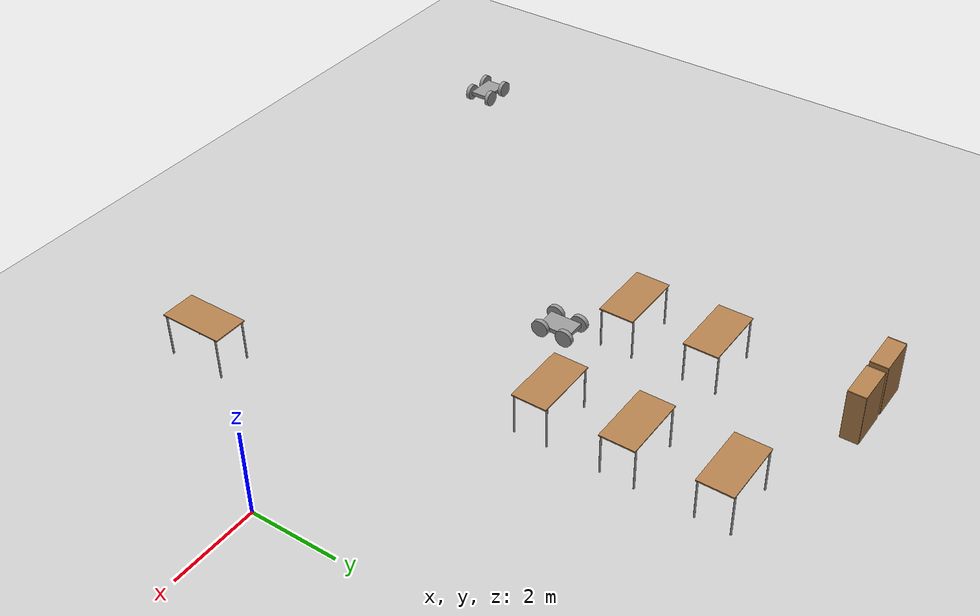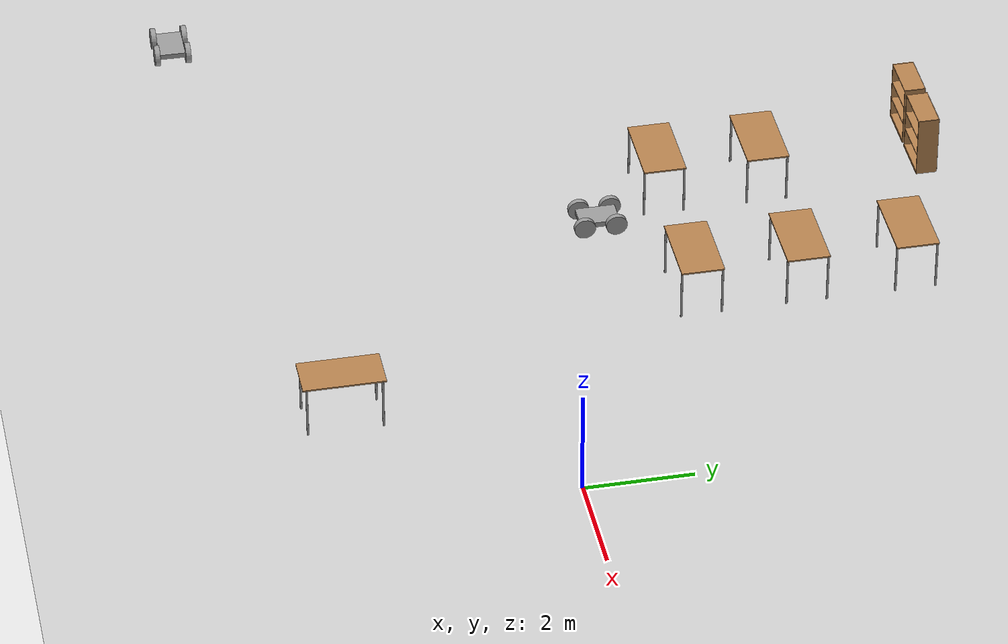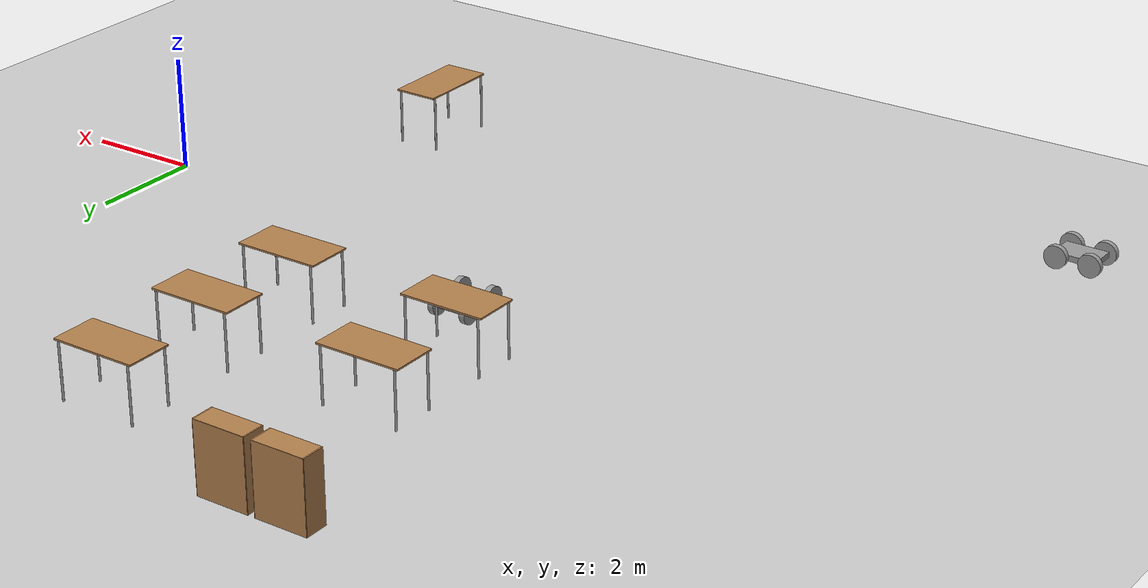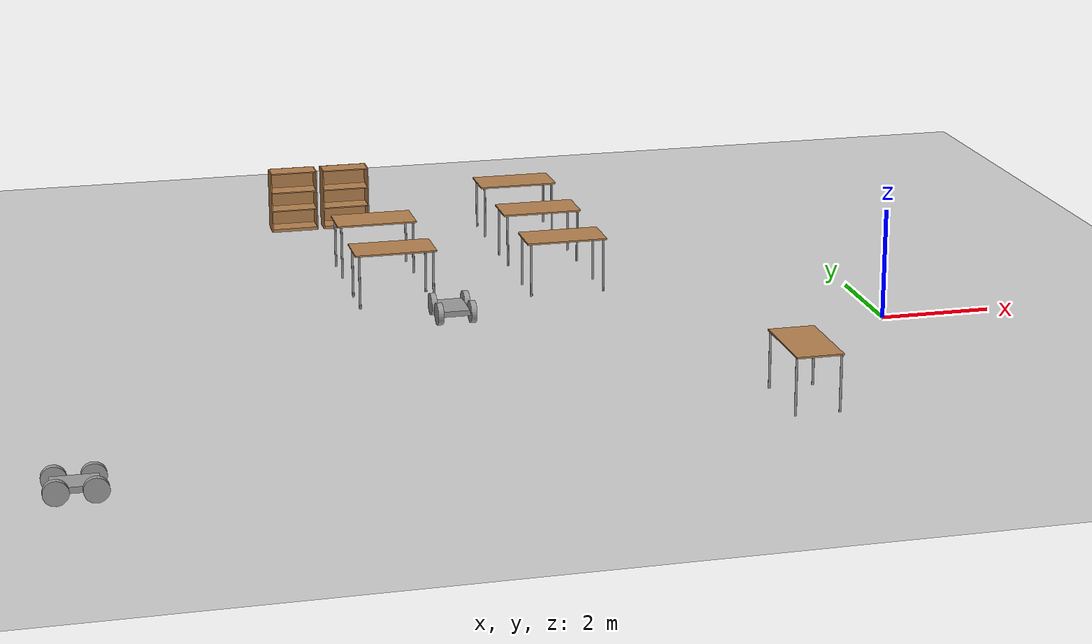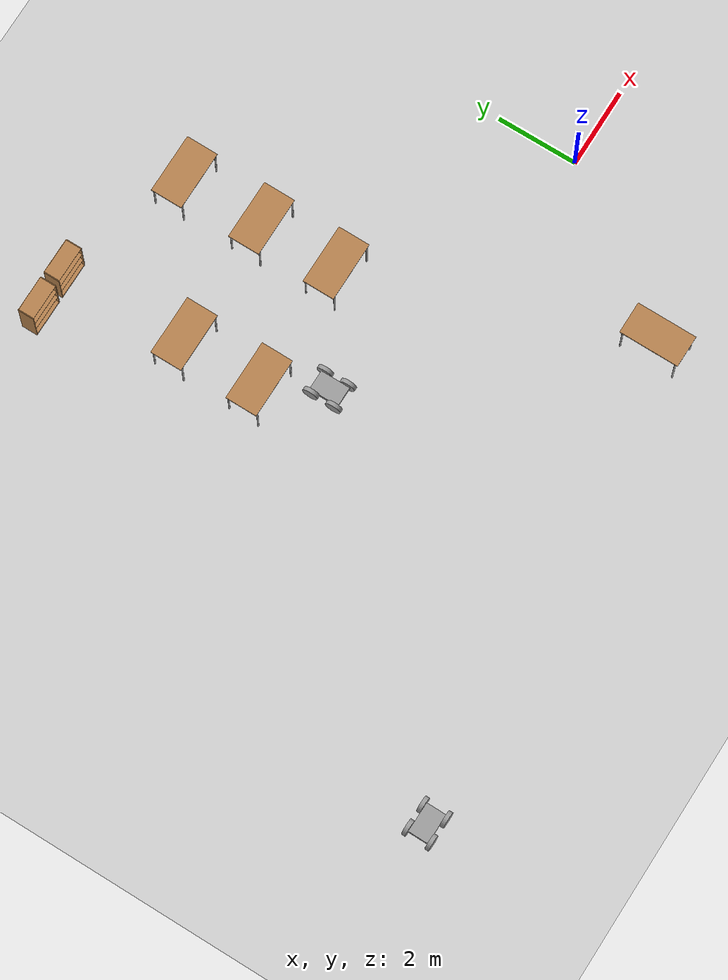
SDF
<sdf version="1.7">
 <world name="default">
  <model name="ground_plane">
   <static>1</static>
   <link name="link">
    <collision name="collision">
     <geometry><plane><normal>0 0 1</normal><size>100 100</size></plane></geometry>
     <surface>
      <contact><collide_bitmask>65535</collide_bitmask></contact>
      <friction><ode><mu>100</mu><mu2>50</mu2></ode></friction>
     </surface>
    </collision>
    <visual name="visual">
     <cast_shadows>0</cast_shadows>
     <geometry><plane><normal>0 0 1</normal><size>100 100</size></plane></geometry>
     <material>
      <script><uri>file://media/materials/scripts/gazebo.material</uri><name>Gazebo/Grey</name></script>
     </material>
    </visual>
   </link>
  </model>
  <model name="bookshelf">
   <static>1</static>
   <link name="link">
    <inertial><mass>1</mass></inertial>
    <collision name="back">
     <pose>0 0.005 0.6 0 -0 0</pose>
     <geometry><box><size>0.9 0.01 1.2</size></box></geometry>
    </collision>
    <visual name="visual1">
     <pose>0 0.005 0.6 0 -0 0</pose>
     <geometry><box><size>0.9 0.01 1.2</size></box></geometry>
     <material>
      <script><uri>file://media/materials/scripts/gazebo.material</uri><name>Gazebo/Wood</name></script>
     </material>
    </visual>
    <collision name="left_side">
     <pose>0.45 -0.195 0.6 0 -0 0</pose>
     <geometry><box><size>0.02 0.4 1.2</size></box></geometry>
    </collision>
    <visual name="visual2">
     <pose>0.45 -0.195 0.6 0 -0 0</pose>
     <geometry><box><size>0.02 0.4 1.2</size></box></geometry>
     <material>
      <script><uri>file://media/materials/scripts/gazebo.material</uri><name>Gazebo/Wood</name></script>
     </material>
    </visual>
    <collision name="right_side">
     <pose>-0.45 -0.195 0.6 0 -0 0</pose>
     <geometry><box><size>0.02 0.4 1.2</size></box></geometry>
    </collision>
    <visual name="visual3">
     <pose>-0.45 -0.195 0.6 0 -0 0</pose>
     <geometry><box><size>0.02 0.4 1.2</size></box></geometry>
     <material>
      <script><uri>file://media/materials/scripts/gazebo.material</uri><name>Gazebo/Wood</name></script>
     </material>
    </visual>
    <collision name="bottom">
     <pose>0 -0.195 0.03 0 -0 0</pose>
     <geometry><box><size>0.88 0.4 0.06</size></box></geometry>
    </collision>
    <visual name="visual4">
     <pose>0 -0.195 0.03 0 -0 0</pose>
     <geometry><box><size>0.88 0.4 0.06</size></box></geometry>
     <material>
      <script><uri>file://media/materials/scripts/gazebo.material</uri><name>Gazebo/Wood</name></script>
     </material>
    </visual>
    <collision name="top">
     <pose>0 -0.195 1.19 0 -0 0</pose>
     <geometry><box><size>0.88 0.4 0.02</size></box></geometry>
    </collision>
    <visual name="visual5">
     <pose>0 -0.195 1.19 0 -0 0</pose>
     <geometry><box><size>0.88 0.4 0.02</size></box></geometry>
     <material>
      <script><uri>file://media/materials/scripts/gazebo.material</uri><name>Gazebo/Wood</name></script>
     </material>
    </visual>
    <collision name="low_shelf">
     <pose>0 -0.195 0.43 0 -0 0</pose>
     <geometry><box><size>0.88 0.4 0.02</size></box></geometry>
    </collision>
    <visual name="visual6">
     <pose>0 -0.195 0.43 0 -0 0</pose>
     <geometry><box><size>0.88 0.4 0.02</size></box></geometry>
     <material>
      <script><uri>file://media/materials/scripts/gazebo.material</uri><name>Gazebo/Wood</name></script>
     </material>
    </visual>
    <collision name="high_shelf">
     <pose>0 -0.195 0.8 0 -0 0</pose>
     <geometry><box><size>0.88 0.4 0.02</size></box></geometry>
    </collision>
    <visual name="visual7">
     <pose>0 -0.195 0.8 0 -0 0</pose>
     <geometry><box><size>0.88 0.4 0.02</size></box></geometry>
     <material>
      <script><uri>file://media/materials/scripts/gazebo.material</uri><name>Gazebo/Wood</name></script>
     </material>
    </visual>
   </link>
   <pose>-9.4279 8.4763 0 0 -0 0</pose>
  </model>
  <model name="bookshelf_0">
   <static>1</static>
   <link name="link">
    <inertial><mass>1</mass></inertial>
    <collision name="back">
     <pose>0 0.005 0.6 0 -0 0</pose>
     <geometry><box><size>0.9 0.01 1.2</size></box></geometry>
    </collision>
    <visual name="visual1">
     <pose>0 0.005 0.6 0 -0 0</pose>
     <geometry><box><size>0.9 0.01 1.2</size></box></geometry>
     <material>
      <script><uri>file://media/materials/scripts/gazebo.material</uri><name>Gazebo/Wood</name></script>
     </material>
    </visual>
    <collision name="left_side">
     <pose>0.45 -0.195 0.6 0 -0 0</pose>
     <geometry><box><size>0.02 0.4 1.2</size></box></geometry>
    </collision>
    <visual name="visual2">
     <pose>0.45 -0.195 0.6 0 -0 0</pose>
     <geometry><box><size>0.02 0.4 1.2</size></box></geometry>
     <material>
      <script><uri>file://media/materials/scripts/gazebo.material</uri><name>Gazebo/Wood</name></script>
     </material>
    </visual>
    <collision name="right_side">
     <pose>-0.45 -0.195 0.6 0 -0 0</pose>
     <geometry><box><size>0.02 0.4 1.2</size></box></geometry>
    </collision>
    <visual name="visual3">
     <pose>-0.45 -0.195 0.6 0 -0 0</pose>
     <geometry><box><size>0.02 0.4 1.2</size></box></geometry>
     <material>
      <script><uri>file://media/materials/scripts/gazebo.material</uri><name>Gazebo/Wood</name></script>
     </material>
    </visual>
    <collision name="bottom">
     <pose>0 -0.195 0.03 0 -0 0</pose>
     <geometry><box><size>0.88 0.4 0.06</size></box></geometry>
    </collision>
    <visual name="visual4">
     <pose>0 -0.195 0.03 0 -0 0</pose>
     <geometry><box><size>0.88 0.4 0.06</size></box></geometry>
     <material>
      <script><uri>file://media/materials/scripts/gazebo.material</uri><name>Gazebo/Wood</name></script>
     </material>
    </visual>
    <collision name="top">
     <pose>0 -0.195 1.19 0 -0 0</pose>
     <geometry><box><size>0.88 0.4 0.02</size></box></geometry>
    </collision>
    <visual name="visual5">
     <pose>0 -0.195 1.19 0 -0 0</pose>
     <geometry><box><size>0.88 0.4 0.02</size></box></geometry>
     <material>
      <script><uri>file://media/materials/scripts/gazebo.material</uri><name>Gazebo/Wood</name></script>
     </material>
    </visual>
    <collision name="low_shelf">
     <pose>0 -0.195 0.43 0 -0 0</pose>
     <geometry><box><size>0.88 0.4 0.02</size></box></geometry>
    </collision>
    <visual name="visual6">
     <pose>0 -0.195 0.43 0 -0 0</pose>
     <geometry><box><size>0.88 0.4 0.02</size></box></geometry>
     <material>
      <script><uri>file://media/materials/scripts/gazebo.material</uri><name>Gazebo/Wood</name></script>
     </material>
    </visual>
    <collision name="high_shelf">
     <pose>0 -0.195 0.8 0 -0 0</pose>
     <geometry><box><size>0.88 0.4 0.02</size></box></geometry>
    </collision>
    <visual name="visual7">
     <pose>0 -0.195 0.8 0 -0 0</pose>
     <geometry><box><size>0.88 0.4 0.02</size></box></geometry>
     <material>
      <script><uri>file://media/materials/scripts/gazebo.material</uri><name>Gazebo/Wood</name></script>
     </material>
    </visual>
   </link>
   <pose>-8.39294 8.4763 0 0 -0 0</pose>
  </model>
  <model name="table">
   <static>1</static>
   <link name="link">
    <collision name="surface">
     <pose>0 0 1 0 -0 0</pose>
     <geometry><box><size>1.5 0.8 0.03</size></box></geometry>
     <surface><friction><ode><mu>0.6</mu><mu2>0.6</mu2></ode></friction></surface>
    </collision>
    <visual name="visual1">
     <pose>0 0 1 0 -0 0</pose>
     <geometry><box><size>1.5 0.8 0.03</size></box></geometry>
     <material>
      <script><uri>file://media/materials/scripts/gazebo.material</uri><name>Gazebo/Wood</name></script>
     </material>
    </visual>
    <collision name="front_left_leg">
     <pose>0.68 0.38 0.5 0 -0 0</pose>
     <geometry><cylinder><radius>0.02</radius><length>1</length></cylinder></geometry>
    </collision>
    <visual name="front_left_leg">
     <pose>0.68 0.38 0.5 0 -0 0</pose>
     <geometry><cylinder><radius>0.02</radius><length>1</length></cylinder></geometry>
     <material>
      <script><uri>file://media/materials/scripts/gazebo.material</uri><name>Gazebo/Grey</name></script>
     </material>
    </visual>
    <collision name="front_right_leg">
     <pose>0.68 -0.38 0.5 0 -0 0</pose>
     <geometry><cylinder><radius>0.02</radius><length>1</length></cylinder></geometry>
    </collision>
    <visual name="front_right_leg">
     <pose>0.68 -0.38 0.5 0 -0 0</pose>
     <geometry><cylinder><radius>0.02</radius><length>1</length></cylinder></geometry>
     <material>
      <script><uri>file://media/materials/scripts/gazebo.material</uri><name>Gazebo/Grey</name></script>
     </material>
    </visual>
    <collision name="back_right_leg">
     <pose>-0.68 -0.38 0.5 0 -0 0</pose>
     <geometry><cylinder><radius>0.02</radius><length>1</length></cylinder></geometry>
    </collision>
    <visual name="back_right_leg">
     <pose>-0.68 -0.38 0.5 0 -0 0</pose>
     <geometry><cylinder><radius>0.02</radius><length>1</length></cylinder></geometry>
     <material>
      <script><uri>file://media/materials/scripts/gazebo.material</uri><name>Gazebo/Grey</name></script>
     </material>
    </visual>
    <collision name="back_left_leg">
     <pose>-0.68 0.38 0.5 0 -0 0</pose>
     <geometry><cylinder><radius>0.02</radius><length>1</length></cylinder></geometry>
    </collision>
    <visual name="back_left_leg">
     <pose>-0.68 0.38 0.5 0 -0 0</pose>
     <geometry><cylinder><radius>0.02</radius><length>1</length></cylinder></geometry>
     <material>
      <script><uri>file://media/materials/scripts/gazebo.material</uri><name>Gazebo/Grey</name></script>
     </material>
    </visual>
   </link>
   <pose>-5.16056 7.15737 0 0 -0 0</pose>
  </model>
  <model name="table_clone">
   <static>1</static>
   <link name="link">
    <collision name="surface">
     <pose>0 0 1 0 -0 0</pose>
     <geometry><box><size>1.5 0.8 0.03</size></box></geometry>
     <surface><friction><ode><mu>0.6</mu><mu2>0.6</mu2></ode></friction></surface>
    </collision>
    <visual name="visual1">
     <pose>0 0 1 0 -0 0</pose>
     <geometry><box><size>1.5 0.8 0.03</size></box></geometry>
     <material>
      <script><uri>file://media/materials/scripts/gazebo.material</uri><name>Gazebo/Wood</name></script>
     </material>
    </visual>
    <collision name="front_left_leg">
     <pose>0.68 0.38 0.5 0 -0 0</pose>
     <geometry><cylinder><radius>0.02</radius><length>1</length></cylinder></geometry>
    </collision>
    <visual name="front_left_leg">
     <pose>0.68 0.38 0.5 0 -0 0</pose>
     <geometry><cylinder><radius>0.02</radius><length>1</length></cylinder></geometry>
     <material>
      <script><uri>file://media/materials/scripts/gazebo.material</uri><name>Gazebo/Grey</name></script>
     </material>
    </visual>
    <collision name="front_right_leg">
     <pose>0.68 -0.38 0.5 0 -0 0</pose>
     <geometry><cylinder><radius>0.02</radius><length>1</length></cylinder></geometry>
    </collision>
    <visual name="front_right_leg">
     <pose>0.68 -0.38 0.5 0 -0 0</pose>
     <geometry><cylinder><radius>0.02</radius><length>1</length></cylinder></geometry>
     <material>
      <script><uri>file://media/materials/scripts/gazebo.material</uri><name>Gazebo/Grey</name></script>
     </material>
    </visual>
    <collision name="back_right_leg">
     <pose>-0.68 -0.38 0.5 0 -0 0</pose>
     <geometry><cylinder><radius>0.02</radius><length>1</length></cylinder></geometry>
    </collision>
    <visual name="back_right_leg">
     <pose>-0.68 -0.38 0.5 0 -0 0</pose>
     <geometry><cylinder><radius>0.02</radius><length>1</length></cylinder></geometry>
     <material>
      <script><uri>file://media/materials/scripts/gazebo.material</uri><name>Gazebo/Grey</name></script>
     </material>
    </visual>
    <collision name="back_left_leg">
     <pose>-0.68 0.38 0.5 0 -0 0</pose>
     <geometry><cylinder><radius>0.02</radius><length>1</length></cylinder></geometry>
    </collision>
    <visual name="back_left_leg">
     <pose>-0.68 0.38 0.5 0 -0 0</pose>
     <geometry><cylinder><radius>0.02</radius><length>1</length></cylinder></geometry>
     <material>
      <script><uri>file://media/materials/scripts/gazebo.material</uri><name>Gazebo/Grey</name></script>
     </material>
    </visual>
   </link>
   <pose>-5.16056 5.1087 0 0 -0 0</pose>
  </model>
  <model name="table_clone_0">
   <static>1</static>
   <link name="link">
    <collision name="surface">
     <pose>0 0 1 0 -0 0</pose>
     <geometry><box><size>1.5 0.8 0.03</size></box></geometry>
     <surface><friction><ode><mu>0.6</mu><mu2>0.6</mu2></ode></friction></surface>
    </collision>
    <visual name="visual1">
     <pose>0 0 1 0 -0 0</pose>
     <geometry><box><size>1.5 0.8 0.03</size></box></geometry>
     <material>
      <script><uri>file://media/materials/scripts/gazebo.material</uri><name>Gazebo/Wood</name></script>
     </material>
    </visual>
    <collision name="front_left_leg">
     <pose>0.68 0.38 0.5 0 -0 0</pose>
     <geometry><cylinder><radius>0.02</radius><length>1</length></cylinder></geometry>
    </collision>
    <visual name="front_left_leg">
     <pose>0.68 0.38 0.5 0 -0 0</pose>
     <geometry><cylinder><radius>0.02</radius><length>1</length></cylinder></geometry>
     <material>
      <script><uri>file://media/materials/scripts/gazebo.material</uri><name>Gazebo/Grey</name></script>
     </material>
    </visual>
    <collision name="front_right_leg">
     <pose>0.68 -0.38 0.5 0 -0 0</pose>
     <geometry><cylinder><radius>0.02</radius><length>1</length></cylinder></geometry>
    </collision>
    <visual name="front_right_leg">
     <pose>0.68 -0.38 0.5 0 -0 0</pose>
     <geometry><cylinder><radius>0.02</radius><length>1</length></cylinder></geometry>
     <material>
      <script><uri>file://media/materials/scripts/gazebo.material</uri><name>Gazebo/Grey</name></script>
     </material>
    </visual>
    <collision name="back_right_leg">
     <pose>-0.68 -0.38 0.5 0 -0 0</pose>
     <geometry><cylinder><radius>0.02</radius><length>1</length></cylinder></geometry>
    </collision>
    <visual name="back_right_leg">
     <pose>-0.68 -0.38 0.5 0 -0 0</pose>
     <geometry><cylinder><radius>0.02</radius><length>1</length></cylinder></geometry>
     <material>
      <script><uri>file://media/materials/scripts/gazebo.material</uri><name>Gazebo/Grey</name></script>
     </material>
    </visual>
    <collision name="back_left_leg">
     <pose>-0.68 0.38 0.5 0 -0 0</pose>
     <geometry><cylinder><radius>0.02</radius><length>1</length></cylinder></geometry>
    </collision>
    <visual name="back_left_leg">
     <pose>-0.68 0.38 0.5 0 -0 0</pose>
     <geometry><cylinder><radius>0.02</radius><length>1</length></cylinder></geometry>
     <material>
      <script><uri>file://media/materials/scripts/gazebo.material</uri><name>Gazebo/Grey</name></script>
     </material>
    </visual>
   </link>
   <pose>-5.16056 3.13783 0 0 -0 0</pose>
  </model>
  <model name="table_clone_1">
   <static>1</static>
   <link name="link">
    <collision name="surface">
     <pose>0 0 1 0 -0 0</pose>
     <geometry><box><size>1.5 0.8 0.03</size></box></geometry>
     <surface><friction><ode><mu>0.6</mu><mu2>0.6</mu2></ode></friction></surface>
    </collision>
    <visual name="visual1">
     <pose>0 0 1 0 -0 0</pose>
     <geometry><box><size>1.5 0.8 0.03</size></box></geometry>
     <material>
      <script><uri>file://media/materials/scripts/gazebo.material</uri><name>Gazebo/Wood</name></script>
     </material>
    </visual>
    <collision name="front_left_leg">
     <pose>0.68 0.38 0.5 0 -0 0</pose>
     <geometry><cylinder><radius>0.02</radius><length>1</length></cylinder></geometry>
    </collision>
    <visual name="front_left_leg">
     <pose>0.68 0.38 0.5 0 -0 0</pose>
     <geometry><cylinder><radius>0.02</radius><length>1</length></cylinder></geometry>
     <material>
      <script><uri>file://media/materials/scripts/gazebo.material</uri><name>Gazebo/Grey</name></script>
     </material>
    </visual>
    <collision name="front_right_leg">
     <pose>0.68 -0.38 0.5 0 -0 0</pose>
     <geometry><cylinder><radius>0.02</radius><length>1</length></cylinder></geometry>
    </collision>
    <visual name="front_right_leg">
     <pose>0.68 -0.38 0.5 0 -0 0</pose>
     <geometry><cylinder><radius>0.02</radius><length>1</length></cylinder></geometry>
     <material>
      <script><uri>file://media/materials/scripts/gazebo.material</uri><name>Gazebo/Grey</name></script>
     </material>
    </visual>
    <collision name="back_right_leg">
     <pose>-0.68 -0.38 0.5 0 -0 0</pose>
     <geometry><cylinder><radius>0.02</radius><length>1</length></cylinder></geometry>
    </collision>
    <visual name="back_right_leg">
     <pose>-0.68 -0.38 0.5 0 -0 0</pose>
     <geometry><cylinder><radius>0.02</radius><length>1</length></cylinder></geometry>
     <material>
      <script><uri>file://media/materials/scripts/gazebo.material</uri><name>Gazebo/Grey</name></script>
     </material>
    </visual>
    <collision name="back_left_leg">
     <pose>-0.68 0.38 0.5 0 -0 0</pose>
     <geometry><cylinder><radius>0.02</radius><length>1</length></cylinder></geometry>
    </collision>
    <visual name="back_left_leg">
     <pose>-0.68 0.38 0.5 0 -0 0</pose>
     <geometry><cylinder><radius>0.02</radius><length>1</length></cylinder></geometry>
     <material>
      <script><uri>file://media/materials/scripts/gazebo.material</uri><name>Gazebo/Grey</name></script>
     </material>
    </visual>
   </link>
   <pose>-8.35026 5.1087 0 0 -0 0</pose>
  </model>
  <model name="table_clone_2">
   <static>1</static>
   <link name="link">
    <collision name="surface">
     <pose>0 0 1 0 -0 0</pose>
     <geometry><box><size>1.5 0.8 0.03</size></box></geometry>
     <surface><friction><ode><mu>0.6</mu><mu2>0.6</mu2></ode></friction></surface>
    </collision>
    <visual name="visual1">
     <pose>0 0 1 0 -0 0</pose>
     <geometry><box><size>1.5 0.8 0.03</size></box></geometry>
     <material>
      <script><uri>file://media/materials/scripts/gazebo.material</uri><name>Gazebo/Wood</name></script>
     </material>
    </visual>
    <collision name="front_left_leg">
     <pose>0.68 0.38 0.5 0 -0 0</pose>
     <geometry><cylinder><radius>0.02</radius><length>1</length></cylinder></geometry>
    </collision>
    <visual name="front_left_leg">
     <pose>0.68 0.38 0.5 0 -0 0</pose>
     <geometry><cylinder><radius>0.02</radius><length>1</length></cylinder></geometry>
     <material>
      <script><uri>file://media/materials/scripts/gazebo.material</uri><name>Gazebo/Grey</name></script>
     </material>
    </visual>
    <collision name="front_right_leg">
     <pose>0.68 -0.38 0.5 0 -0 0</pose>
     <geometry><cylinder><radius>0.02</radius><length>1</length></cylinder></geometry>
    </collision>
    <visual name="front_right_leg">
     <pose>0.68 -0.38 0.5 0 -0 0</pose>
     <geometry><cylinder><radius>0.02</radius><length>1</length></cylinder></geometry>
     <material>
      <script><uri>file://media/materials/scripts/gazebo.material</uri><name>Gazebo/Grey</name></script>
     </material>
    </visual>
    <collision name="back_right_leg">
     <pose>-0.68 -0.38 0.5 0 -0 0</pose>
     <geometry><cylinder><radius>0.02</radius><length>1</length></cylinder></geometry>
    </collision>
    <visual name="back_right_leg">
     <pose>-0.68 -0.38 0.5 0 -0 0</pose>
     <geometry><cylinder><radius>0.02</radius><length>1</length></cylinder></geometry>
     <material>
      <script><uri>file://media/materials/scripts/gazebo.material</uri><name>Gazebo/Grey</name></script>
     </material>
    </visual>
    <collision name="back_left_leg">
     <pose>-0.68 0.38 0.5 0 -0 0</pose>
     <geometry><cylinder><radius>0.02</radius><length>1</length></cylinder></geometry>
    </collision>
    <visual name="back_left_leg">
     <pose>-0.68 0.38 0.5 0 -0 0</pose>
     <geometry><cylinder><radius>0.02</radius><length>1</length></cylinder></geometry>
     <material>
      <script><uri>file://media/materials/scripts/gazebo.material</uri><name>Gazebo/Grey</name></script>
     </material>
    </visual>
   </link>
   <pose>-8.35026 3.13783 0 0 -0 0</pose>
  </model>
  <model name="table_1">
   <static>1</static>
   <link name="link">
    <collision name="surface">
     <pose>0 0 1 0 -0 0</pose>
     <geometry><box><size>1.5 0.8 0.03</size></box></geometry>
     <surface><friction><ode><mu>0.6</mu><mu2>0.6</mu2></ode></friction></surface>
    </collision>
    <visual name="visual1">
     <pose>0 0 1 0 -0 0</pose>
     <geometry><box><size>1.5 0.8 0.03</size></box></geometry>
     <material>
      <script><uri>file://media/materials/scripts/gazebo.material</uri><name>Gazebo/Wood</name></script>
     </material>
    </visual>
    <collision name="front_left_leg">
     <pose>0.68 0.38 0.5 0 -0 0</pose>
     <geometry><cylinder><radius>0.02</radius><length>1</length></cylinder></geometry>
    </collision>
    <visual name="front_left_leg">
     <pose>0.68 0.38 0.5 0 -0 0</pose>
     <geometry><cylinder><radius>0.02</radius><length>1</length></cylinder></geometry>
     <material>
      <script><uri>file://media/materials/scripts/gazebo.material</uri><name>Gazebo/Grey</name></script>
     </material>
    </visual>
    <collision name="front_right_leg">
     <pose>0.68 -0.38 0.5 0 -0 0</pose>
     <geometry><cylinder><radius>0.02</radius><length>1</length></cylinder></geometry>
    </collision>
    <visual name="front_right_leg">
     <pose>0.68 -0.38 0.5 0 -0 0</pose>
     <geometry><cylinder><radius>0.02</radius><length>1</length></cylinder></geometry>
     <material>
      <script><uri>file://media/materials/scripts/gazebo.material</uri><name>Gazebo/Grey</name></script>
     </material>
    </visual>
    <collision name="back_right_leg">
     <pose>-0.68 -0.38 0.5 0 -0 0</pose>
     <geometry><cylinder><radius>0.02</radius><length>1</length></cylinder></geometry>
    </collision>
    <visual name="back_right_leg">
     <pose>-0.68 -0.38 0.5 0 -0 0</pose>
     <geometry><cylinder><radius>0.02</radius><length>1</length></cylinder></geometry>
     <material>
      <script><uri>file://media/materials/scripts/gazebo.material</uri><name>Gazebo/Grey</name></script>
     </material>
    </visual>
    <collision name="back_left_leg">
     <pose>-0.68 0.38 0.5 0 -0 0</pose>
     <geometry><cylinder><radius>0.02</radius><length>1</length></cylinder></geometry>
    </collision>
    <visual name="back_left_leg">
     <pose>-0.68 0.38 0.5 0 -0 0</pose>
     <geometry><cylinder><radius>0.02</radius><length>1</length></cylinder></geometry>
     <material>
      <script><uri>file://media/materials/scripts/gazebo.material</uri><name>Gazebo/Grey</name></script>
     </material>
    </visual>
   </link>
   <pose>-2.78167 -3.78506 0 0 -0 1.57</pose>
  </model>
  <model name="four_wheeled_robot">
   <link name="link_0">
    <inertial>
     <mass>1</mass>
     <inertia>
      <ixx>0.166667</ixx>
      <ixy>0</ixy>
      <ixz>0</ixz>
      <iyy>0.166667</iyy>
      <iyz>0</iyz>
      <izz>0.166667</izz>
     </inertia>
    </inertial>
    <pose>-0.085901 0 -0.120032 0 -0 0</pose>
    <visual name="visual">
     <geometry><box><size>0.75 0.5 0.1</size></box></geometry>
     <material>
      <lighting>1</lighting>
      <script><uri>file://media/materials/scripts/gazebo.material</uri><name>Gazebo/Grey</name></script>
      <shader type="pixel"><normal_map>__default__</normal_map></shader>
      <ambient>0.3 0.3 0.3 1</ambient>
      <diffuse>0.7 0.7 0.7 1</diffuse>
      <specular>0.01 0.01 0.01 1</specular>
      <emissive>0 0 0 1</emissive>
     </material>
    </visual>
    <collision name="collision">
     <geometry><box><size>0.75 0.5 0.1</size></box></geometry>
     <surface>
      <friction>
       <ode><mu>1</mu><mu2>1</mu2><fdir1>0 0 0</fdir1><slip1>0</slip1><slip2>0</slip2></ode>
       <torsional>
        <coefficient>1</coefficient>
        <patch_radius>0</patch_radius>
        <surface_radius>0</surface_radius>
        <use_patch_radius>1</use_patch_radius>
        <ode><slip>0</slip></ode>
       </torsional>
      </friction>
      <bounce><restitution_coefficient>0</restitution_coefficient><threshold>1e+06</threshold></bounce>
      <contact>
       <collide_without_contact>0</collide_without_contact>
       <collide_without_contact_bitmask>1</collide_without_contact_bitmask>
       <collide_bitmask>1</collide_bitmask>
       <ode>
        <soft_cfm>0</soft_cfm>
        <soft_erp>0.2</soft_erp>
        <kp>1e+13</kp>
        <kd>1</kd>
        <max_vel>0.01</max_vel>
        <min_depth>0</min_depth>
       </ode>
       <bullet>
        <split_impulse>1</split_impulse>
        <split_impulse_penetration_threshold>-0.01</split_impulse_penetration_threshold>
        <soft_cfm>0</soft_cfm>
        <soft_erp>0.2</soft_erp>
        <kp>1e+13</kp>
        <kd>1</kd>
       </bullet>
      </contact>
     </surface>
    </collision>
   </link>
   <link name="link_1">
    <inertial>
     <mass>1</mass>
     <inertia><ixx>0.145833</ixx><ixy>0</ixy><ixz>0</ixz><iyy>0.145833</iyy><iyz>0</iyz><izz>0.125</izz></inertia>
    </inertial>
    <pose>-0.385901 0.300159 -0.120032 -1.57 0 0</pose>
    <visual name="visual">
     <geometry><cylinder><radius>0.2</radius><length>0.1</length></cylinder></geometry>
     <material>
      <lighting>1</lighting>
      <script><uri>file://media/materials/scripts/gazebo.material</uri><name>Gazebo/Grey</name></script>
      <shader type="pixel"><normal_map>__default__</normal_map></shader>
      <ambient>0.3 0.3 0.3 1</ambient>
      <diffuse>0.7 0.7 0.7 1</diffuse>
      <specular>0.01 0.01 0.01 1</specular>
      <emissive>0 0 0 1</emissive>
     </material>
    </visual>
    <collision name="collision">
     <geometry><cylinder><radius>0.2</radius><length>0.1</length></cylinder></geometry>
     <surface>
      <friction>
       <ode><mu>1</mu><mu2>1</mu2><fdir1>0 0 0</fdir1><slip1>0</slip1><slip2>0</slip2></ode>
       <torsional>
        <coefficient>1</coefficient>
        <patch_radius>0</patch_radius>
        <surface_radius>0</surface_radius>
        <use_patch_radius>1</use_patch_radius>
        <ode><slip>0</slip></ode>
       </torsional>
      </friction>
      <bounce><restitution_coefficient>0</restitution_coefficient><threshold>1e+06</threshold></bounce>
      <contact>
       <collide_without_contact>0</collide_without_contact>
       <collide_without_contact_bitmask>1</collide_without_contact_bitmask>
       <collide_bitmask>1</collide_bitmask>
       <ode>
        <soft_cfm>0</soft_cfm>
        <soft_erp>0.2</soft_erp>
        <kp>1e+13</kp>
        <kd>1</kd>
        <max_vel>0.01</max_vel>
        <min_depth>0</min_depth>
       </ode>
       <bullet>
        <split_impulse>1</split_impulse>
        <split_impulse_penetration_threshold>-0.01</split_impulse_penetration_threshold>
        <soft_cfm>0</soft_cfm>
        <soft_erp>0.2</soft_erp>
        <kp>1e+13</kp>
        <kd>1</kd>
       </bullet>
      </contact>
     </surface>
    </collision>
   </link>
   <link name="link_1_clone">
    <inertial>
     <mass>1</mass>
     <inertia><ixx>0.145833</ixx><ixy>0</ixy><ixz>0</ixz><iyy>0.145833</iyy><iyz>0</iyz><izz>0.125</izz></inertia>
    </inertial>
    <pose>0.214099 0.300159 -0.120032 -1.57 0 0</pose>
    <visual name="visual">
     <geometry><cylinder><radius>0.2</radius><length>0.1</length></cylinder></geometry>
     <material>
      <lighting>1</lighting>
      <script><uri>file://media/materials/scripts/gazebo.material</uri><name>Gazebo/Grey</name></script>
      <shader type="pixel"><normal_map>__default__</normal_map></shader>
      <ambient>0.3 0.3 0.3 1</ambient>
      <diffuse>0.7 0.7 0.7 1</diffuse>
      <specular>0.01 0.01 0.01 1</specular>
      <emissive>0 0 0 1</emissive>
     </material>
    </visual>
    <collision name="collision">
     <geometry><cylinder><radius>0.2</radius><length>0.1</length></cylinder></geometry>
     <surface>
      <friction>
       <ode><mu>1</mu><mu2>1</mu2><fdir1>0 0 0</fdir1><slip1>0</slip1><slip2>0</slip2></ode>
       <torsional>
        <coefficient>1</coefficient>
        <patch_radius>0</patch_radius>
        <surface_radius>0</surface_radius>
        <use_patch_radius>1</use_patch_radius>
        <ode><slip>0</slip></ode>
       </torsional>
      </friction>
      <bounce><restitution_coefficient>0</restitution_coefficient><threshold>1e+06</threshold></bounce>
      <contact>
       <collide_without_contact>0</collide_without_contact>
       <collide_without_contact_bitmask>1</collide_without_contact_bitmask>
       <collide_bitmask>1</collide_bitmask>
       <ode>
        <soft_cfm>0</soft_cfm>
        <soft_erp>0.2</soft_erp>
        <kp>1e+13</kp>
        <kd>1</kd>
        <max_vel>0.01</max_vel>
        <min_depth>0</min_depth>
       </ode>
       <bullet>
        <split_impulse>1</split_impulse>
        <split_impulse_penetration_threshold>-0.01</split_impulse_penetration_threshold>
        <soft_cfm>0</soft_cfm>
        <soft_erp>0.2</soft_erp>
        <kp>1e+13</kp>
        <kd>1</kd>
       </bullet>
      </contact>
     </surface>
    </collision>
   </link>
   <link name="link_1_clone_0">
    <inertial>
     <mass>1</mass>
     <inertia><ixx>0.145833</ixx><ixy>0</ixy><ixz>0</ixz><iyy>0.145833</iyy><iyz>0</iyz><izz>0.125</izz></inertia>
    </inertial>
    <pose>0.214099 -0.300159 -0.120032 -1.57 0 0</pose>
    <visual name="visual">
     <geometry><cylinder><radius>0.2</radius><length>0.1</length></cylinder></geometry>
     <material>
      <lighting>1</lighting>
      <script><uri>file://media/materials/scripts/gazebo.material</uri><name>Gazebo/Grey</name></script>
      <shader type="pixel"><normal_map>__default__</normal_map></shader>
      <ambient>0.3 0.3 0.3 1</ambient>
      <diffuse>0.7 0.7 0.7 1</diffuse>
      <specular>0.01 0.01 0.01 1</specular>
      <emissive>0 0 0 1</emissive>
     </material>
    </visual>
    <collision name="collision">
     <geometry><cylinder><radius>0.2</radius><length>0.1</length></cylinder></geometry>
     <surface>
      <friction>
       <ode><mu>1</mu><mu2>1</mu2><fdir1>0 0 0</fdir1><slip1>0</slip1><slip2>0</slip2></ode>
       <torsional>
        <coefficient>1</coefficient>
        <patch_radius>0</patch_radius>
        <surface_radius>0</surface_radius>
        <use_patch_radius>1</use_patch_radius>
        <ode><slip>0</slip></ode>
       </torsional>
      </friction>
      <bounce><restitution_coefficient>0</restitution_coefficient><threshold>1e+06</threshold></bounce>
      <contact>
       <collide_without_contact>0</collide_without_contact>
       <collide_without_contact_bitmask>1</collide_without_contact_bitmask>
       <collide_bitmask>1</collide_bitmask>
       <ode>
        <soft_cfm>0</soft_cfm>
        <soft_erp>0.2</soft_erp>
        <kp>1e+13</kp>
        <kd>1</kd>
        <max_vel>0.01</max_vel>
        <min_depth>0</min_depth>
       </ode>
       <bullet>
        <split_impulse>1</split_impulse>
        <split_impulse_penetration_threshold>-0.01</split_impulse_penetration_threshold>
        <soft_cfm>0</soft_cfm>
        <soft_erp>0.2</soft_erp>
        <kp>1e+13</kp>
        <kd>1</kd>
       </bullet>
      </contact>
     </surface>
    </collision>
   </link>
   <link name="link_1_clone_1">
    <inertial>
     <mass>1</mass>
     <inertia><ixx>0.145833</ixx><ixy>0</ixy><ixz>0</ixz><iyy>0.145833</iyy><iyz>0</iyz><izz>0.125</izz></inertia>
    </inertial>
    <pose>-0.385901 -0.300159 -0.120032 -1.57 0 0</pose>
    <visual name="visual">
     <geometry><cylinder><radius>0.2</radius><length>0.1</length></cylinder></geometry>
     <material>
      <lighting>1</lighting>
      <script><uri>file://media/materials/scripts/gazebo.material</uri><name>Gazebo/Grey</name></script>
      <shader type="pixel"><normal_map>__default__</normal_map></shader>
      <ambient>0.3 0.3 0.3 1</ambient>
      <diffuse>0.7 0.7 0.7 1</diffuse>
      <specular>0.01 0.01 0.01 1</specular>
      <emissive>0 0 0 1</emissive>
     </material>
    </visual>
    <collision name="collision">
     <geometry><cylinder><radius>0.2</radius><length>0.1</length></cylinder></geometry>
     <surface>
      <friction>
       <ode><mu>1</mu><mu2>1</mu2><fdir1>0 0 0</fdir1><slip1>0</slip1><slip2>0</slip2></ode>
       <torsional>
        <coefficient>1</coefficient>
        <patch_radius>0</patch_radius>
        <surface_radius>0</surface_radius>
        <use_patch_radius>1</use_patch_radius>
        <ode><slip>0</slip></ode>
       </torsional>
      </friction>
      <bounce><restitution_coefficient>0</restitution_coefficient><threshold>1e+06</threshold></bounce>
      <contact>
       <collide_without_contact>0</collide_without_contact>
       <collide_without_contact_bitmask>1</collide_without_contact_bitmask>
       <collide_bitmask>1</collide_bitmask>
       <ode>
        <soft_cfm>0</soft_cfm>
        <soft_erp>0.2</soft_erp>
        <kp>1e+13</kp>
        <kd>1</kd>
        <max_vel>0.01</max_vel>
        <min_depth>0</min_depth>
       </ode>
       <bullet>
        <split_impulse>1</split_impulse>
        <split_impulse_penetration_threshold>-0.01</split_impulse_penetration_threshold>
        <soft_cfm>0</soft_cfm>
        <soft_erp>0.2</soft_erp>
        <kp>1e+13</kp>
        <kd>1</kd>
       </bullet>
      </contact>
     </surface>
    </collision>
   </link>
   <joint name="link_0_JOINT_0" type="revolute">
    <parent>link_0</parent>
    <child>link_1</child>
    <axis>
     <xyz>0 0 1</xyz>
     <limit>
      <lower>-1.79769e+308</lower>
      <upper>1.79769e+308</upper>
      <effort>-1</effort>
      <velocity>-1</velocity>
     </limit>
     <dynamics>
      <spring_reference>0</spring_reference>
      <spring_stiffness>0</spring_stiffness>
      <damping>0</damping>
     </dynamics>
    </axis>
    <physics>
     <ode><limit><cfm>0</cfm><erp>0.2</erp></limit><suspension><cfm>0</cfm><erp>0.2</erp></suspension></ode>
    </physics>
   </joint>
   <joint name="link_0_JOINT_1" type="revolute">
    <parent>link_0</parent>
    <child>link_1_clone</child>
    <axis>
     <xyz>0 0 1</xyz>
     <limit>
      <lower>-1.79769e+308</lower>
      <upper>1.79769e+308</upper>
      <effort>-1</effort>
      <velocity>-1</velocity>
     </limit>
     <dynamics>
      <spring_reference>0</spring_reference>
      <spring_stiffness>0</spring_stiffness>
      <damping>0</damping>
     </dynamics>
    </axis>
    <physics>
     <ode><limit><cfm>0</cfm><erp>0.2</erp></limit><suspension><cfm>0</cfm><erp>0.2</erp></suspension></ode>
    </physics>
   </joint>
   <joint name="link_0_JOINT_2" type="revolute">
    <parent>link_0</parent>
    <child>link_1_clone_0</child>
    <axis>
     <xyz>-0 -0 -1</xyz>
     <limit>
      <lower>-1.79769e+308</lower>
      <upper>1.79769e+308</upper>
      <effort>-1</effort>
      <velocity>-1</velocity>
     </limit>
     <dynamics>
      <spring_reference>0</spring_reference>
      <spring_stiffness>0</spring_stiffness>
      <damping>0</damping>
     </dynamics>
    </axis>
    <physics>
     <ode><limit><cfm>0</cfm><erp>0.2</erp></limit><suspension><cfm>0</cfm><erp>0.2</erp></suspension></ode>
    </physics>
   </joint>
   <joint name="link_0_JOINT_4" type="revolute">
    <parent>link_0</parent>
    <child>link_1_clone_1</child>
    <axis>
     <xyz>-0 -0 -1</xyz>
     <limit>
      <lower>-1.79769e+308</lower>
      <upper>1.79769e+308</upper>
      <effort>-1</effort>
      <velocity>-1</velocity>
     </limit>
     <dynamics>
      <spring_reference>0</spring_reference>
      <spring_stiffness>0</spring_stiffness>
      <damping>0</damping>
     </dynamics>
    </axis>
    <physics>
     <ode><limit><cfm>0</cfm><erp>0.2</erp></limit><suspension><cfm>0</cfm><erp>0.2</erp></suspension></ode>
    </physics>
   </joint>
   <static>0</static>
   <pose>-14.5913 -5.18253 0.32007 -3e-06 -1.3e-05 -0.012299</pose>
   <plugin name="push_cart" filename="libpush_cart.so"/>
  </model>
  <model name="four_wheeled_robot_0">
   <link name="link_0">
    <inertial>
     <mass>1</mass>
     <inertia>
      <ixx>0.166667</ixx>
      <ixy>0</ixy>
      <ixz>0</ixz>
      <iyy>0.166667</iyy>
      <iyz>0</iyz>
      <izz>0.166667</izz>
     </inertia>
    </inertial>
    <pose>-0.085901 0 -0.120032 0 -0 0</pose>
    <visual name="visual">
     <geometry><box><size>0.75 0.5 0.1</size></box></geometry>
     <material>
      <lighting>1</lighting>
      <script><uri>file://media/materials/scripts/gazebo.material</uri><name>Gazebo/Grey</name></script>
      <shader type="pixel"><normal_map>__default__</normal_map></shader>
      <ambient>0.3 0.3 0.3 1</ambient>
      <diffuse>0.7 0.7 0.7 1</diffuse>
      <specular>0.01 0.01 0.01 1</specular>
      <emissive>0 0 0 1</emissive>
     </material>
    </visual>
    <collision name="collision">
     <geometry><box><size>0.75 0.5 0.1</size></box></geometry>
     <surface>
      <friction>
       <ode><mu>1</mu><mu2>1</mu2><fdir1>0 0 0</fdir1><slip1>0</slip1><slip2>0</slip2></ode>
       <torsional>
        <coefficient>1</coefficient>
        <patch_radius>0</patch_radius>
        <surface_radius>0</surface_radius>
        <use_patch_radius>1</use_patch_radius>
        <ode><slip>0</slip></ode>
       </torsional>
      </friction>
      <bounce><restitution_coefficient>0</restitution_coefficient><threshold>1e+06</threshold></bounce>
      <contact>
       <collide_without_contact>0</collide_without_contact>
       <collide_without_contact_bitmask>1</collide_without_contact_bitmask>
       <collide_bitmask>1</collide_bitmask>
       <ode>
        <soft_cfm>0</soft_cfm>
        <soft_erp>0.2</soft_erp>
        <kp>1e+13</kp>
        <kd>1</kd>
        <max_vel>0.01</max_vel>
        <min_depth>0</min_depth>
       </ode>
       <bullet>
        <split_impulse>1</split_impulse>
        <split_impulse_penetration_threshold>-0.01</split_impulse_penetration_threshold>
        <soft_cfm>0</soft_cfm>
        <soft_erp>0.2</soft_erp>
        <kp>1e+13</kp>
        <kd>1</kd>
       </bullet>
      </contact>
     </surface>
    </collision>
   </link>
   <link name="link_1">
    <inertial>
     <mass>1</mass>
     <inertia><ixx>0.145833</ixx><ixy>0</ixy><ixz>0</ixz><iyy>0.145833</iyy><iyz>0</iyz><izz>0.125</izz></inertia>
    </inertial>
    <pose>-0.385901 0.300159 -0.120032 -1.57 0 0</pose>
    <visual name="visual">
     <geometry><cylinder><radius>0.2</radius><length>0.1</length></cylinder></geometry>
     <material>
      <lighting>1</lighting>
      <script><uri>file://media/materials/scripts/gazebo.material</uri><name>Gazebo/Grey</name></script>
      <shader type="pixel"><normal_map>__default__</normal_map></shader>
      <ambient>0.3 0.3 0.3 1</ambient>
      <diffuse>0.7 0.7 0.7 1</diffuse>
      <specular>0.01 0.01 0.01 1</specular>
      <emissive>0 0 0 1</emissive>
     </material>
    </visual>
    <collision name="collision">
     <geometry><cylinder><radius>0.2</radius><length>0.1</length></cylinder></geometry>
     <surface>
      <friction>
       <ode><mu>1</mu><mu2>1</mu2><fdir1>0 0 0</fdir1><slip1>0</slip1><slip2>0</slip2></ode>
       <torsional>
        <coefficient>1</coefficient>
        <patch_radius>0</patch_radius>
        <surface_radius>0</surface_radius>
        <use_patch_radius>1</use_patch_radius>
        <ode><slip>0</slip></ode>
       </torsional>
      </friction>
      <bounce><restitution_coefficient>0</restitution_coefficient><threshold>1e+06</threshold></bounce>
      <contact>
       <collide_without_contact>0</collide_without_contact>
       <collide_without_contact_bitmask>1</collide_without_contact_bitmask>
       <collide_bitmask>1</collide_bitmask>
       <ode>
        <soft_cfm>0</soft_cfm>
        <soft_erp>0.2</soft_erp>
        <kp>1e+13</kp>
        <kd>1</kd>
        <max_vel>0.01</max_vel>
        <min_depth>0</min_depth>
       </ode>
       <bullet>
        <split_impulse>1</split_impulse>
        <split_impulse_penetration_threshold>-0.01</split_impulse_penetration_threshold>
        <soft_cfm>0</soft_cfm>
        <soft_erp>0.2</soft_erp>
        <kp>1e+13</kp>
        <kd>1</kd>
       </bullet>
      </contact>
     </surface>
    </collision>
   </link>
   <link name="link_1_clone">
    <inertial>
     <mass>1</mass>
     <inertia><ixx>0.145833</ixx><ixy>0</ixy><ixz>0</ixz><iyy>0.145833</iyy><iyz>0</iyz><izz>0.125</izz></inertia>
    </inertial>
    <pose>0.214099 0.300159 -0.120032 -1.57 0 0</pose>
    <visual name="visual">
     <geometry><cylinder><radius>0.2</radius><length>0.1</length></cylinder></geometry>
     <material>
      <lighting>1</lighting>
      <script><uri>file://media/materials/scripts/gazebo.material</uri><name>Gazebo/Grey</name></script>
      <shader type="pixel"><normal_map>__default__</normal_map></shader>
      <ambient>0.3 0.3 0.3 1</ambient>
      <diffuse>0.7 0.7 0.7 1</diffuse>
      <specular>0.01 0.01 0.01 1</specular>
      <emissive>0 0 0 1</emissive>
     </material>
    </visual>
    <collision name="collision">
     <geometry><cylinder><radius>0.2</radius><length>0.1</length></cylinder></geometry>
     <surface>
      <friction>
       <ode><mu>1</mu><mu2>1</mu2><fdir1>0 0 0</fdir1><slip1>0</slip1><slip2>0</slip2></ode>
       <torsional>
        <coefficient>1</coefficient>
        <patch_radius>0</patch_radius>
        <surface_radius>0</surface_radius>
        <use_patch_radius>1</use_patch_radius>
        <ode><slip>0</slip></ode>
       </torsional>
      </friction>
      <bounce><restitution_coefficient>0</restitution_coefficient><threshold>1e+06</threshold></bounce>
      <contact>
       <collide_without_contact>0</collide_without_contact>
       <collide_without_contact_bitmask>1</collide_without_contact_bitmask>
       <collide_bitmask>1</collide_bitmask>
       <ode>
        <soft_cfm>0</soft_cfm>
        <soft_erp>0.2</soft_erp>
        <kp>1e+13</kp>
        <kd>1</kd>
        <max_vel>0.01</max_vel>
        <min_depth>0</min_depth>
       </ode>
       <bullet>
        <split_impulse>1</split_impulse>
        <split_impulse_penetration_threshold>-0.01</split_impulse_penetration_threshold>
        <soft_cfm>0</soft_cfm>
        <soft_erp>0.2</soft_erp>
        <kp>1e+13</kp>
        <kd>1</kd>
       </bullet>
      </contact>
     </surface>
    </collision>
   </link>
   <link name="link_1_clone_0">
    <inertial>
     <mass>1</mass>
     <inertia><ixx>0.145833</ixx><ixy>0</ixy><ixz>0</ixz><iyy>0.145833</iyy><iyz>0</iyz><izz>0.125</izz></inertia>
    </inertial>
    <pose>0.214099 -0.300159 -0.120032 -1.57 0 0</pose>
    <visual name="visual">
     <geometry><cylinder><radius>0.2</radius><length>0.1</length></cylinder></geometry>
     <material>
      <lighting>1</lighting>
      <script><uri>file://media/materials/scripts/gazebo.material</uri><name>Gazebo/Grey</name></script>
      <shader type="pixel"><normal_map>__default__</normal_map></shader>
      <ambient>0.3 0.3 0.3 1</ambient>
      <diffuse>0.7 0.7 0.7 1</diffuse>
      <specular>0.01 0.01 0.01 1</specular>
      <emissive>0 0 0 1</emissive>
     </material>
    </visual>
    <collision name="collision">
     <geometry><cylinder><radius>0.2</radius><length>0.1</length></cylinder></geometry>
     <surface>
      <friction>
       <ode><mu>1</mu><mu2>1</mu2><fdir1>0 0 0</fdir1><slip1>0</slip1><slip2>0</slip2></ode>
       <torsional>
        <coefficient>1</coefficient>
        <patch_radius>0</patch_radius>
        <surface_radius>0</surface_radius>
        <use_patch_radius>1</use_patch_radius>
        <ode><slip>0</slip></ode>
       </torsional>
      </friction>
      <bounce><restitution_coefficient>0</restitution_coefficient><threshold>1e+06</threshold></bounce>
      <contact>
       <collide_without_contact>0</collide_without_contact>
       <collide_without_contact_bitmask>1</collide_without_contact_bitmask>
       <collide_bitmask>1</collide_bitmask>
       <ode>
        <soft_cfm>0</soft_cfm>
        <soft_erp>0.2</soft_erp>
        <kp>1e+13</kp>
        <kd>1</kd>
        <max_vel>0.01</max_vel>
        <min_depth>0</min_depth>
       </ode>
       <bullet>
        <split_impulse>1</split_impulse>
        <split_impulse_penetration_threshold>-0.01</split_impulse_penetration_threshold>
        <soft_cfm>0</soft_cfm>
        <soft_erp>0.2</soft_erp>
        <kp>1e+13</kp>
        <kd>1</kd>
       </bullet>
      </contact>
     </surface>
    </collision>
   </link>
   <link name="link_1_clone_1">
    <inertial>
     <mass>1</mass>
     <inertia><ixx>0.145833</ixx><ixy>0</ixy><ixz>0</ixz><iyy>0.145833</iyy><iyz>0</iyz><izz>0.125</izz></inertia>
    </inertial>
    <pose>-0.385901 -0.300159 -0.120032 -1.57 0 0</pose>
    <visual name="visual">
     <geometry><cylinder><radius>0.2</radius><length>0.1</length></cylinder></geometry>
     <material>
      <lighting>1</lighting>
      <script><uri>file://media/materials/scripts/gazebo.material</uri><name>Gazebo/Grey</name></script>
      <shader type="pixel"><normal_map>__default__</normal_map></shader>
      <ambient>0.3 0.3 0.3 1</ambient>
      <diffuse>0.7 0.7 0.7 1</diffuse>
      <specular>0.01 0.01 0.01 1</specular>
      <emissive>0 0 0 1</emissive>
     </material>
    </visual>
    <collision name="collision">
     <geometry><cylinder><radius>0.2</radius><length>0.1</length></cylinder></geometry>
     <surface>
      <friction>
       <ode><mu>1</mu><mu2>1</mu2><fdir1>0 0 0</fdir1><slip1>0</slip1><slip2>0</slip2></ode>
       <torsional>
        <coefficient>1</coefficient>
        <patch_radius>0</patch_radius>
        <surface_radius>0</surface_radius>
        <use_patch_radius>1</use_patch_radius>
        <ode><slip>0</slip></ode>
       </torsional>
      </friction>
      <bounce><restitution_coefficient>0</restitution_coefficient><threshold>1e+06</threshold></bounce>
      <contact>
       <collide_without_contact>0</collide_without_contact>
       <collide_without_contact_bitmask>1</collide_without_contact_bitmask>
       <collide_bitmask>1</collide_bitmask>
       <ode>
        <soft_cfm>0</soft_cfm>
        <soft_erp>0.2</soft_erp>
        <kp>1e+13</kp>
        <kd>1</kd>
        <max_vel>0.01</max_vel>
        <min_depth>0</min_depth>
       </ode>
       <bullet>
        <split_impulse>1</split_impulse>
        <split_impulse_penetration_threshold>-0.01</split_impulse_penetration_threshold>
        <soft_cfm>0</soft_cfm>
        <soft_erp>0.2</soft_erp>
        <kp>1e+13</kp>
        <kd>1</kd>
       </bullet>
      </contact>
     </surface>
    </collision>
   </link>
   <joint name="link_0_JOINT_0" type="revolute">
    <parent>link_0</parent>
    <child>link_1</child>
    <axis>
     <xyz>0 0 1</xyz>
     <limit>
      <lower>-1.79769e+308</lower>
      <upper>1.79769e+308</upper>
      <effort>-1</effort>
      <velocity>-1</velocity>
     </limit>
     <dynamics>
      <spring_reference>0</spring_reference>
      <spring_stiffness>0</spring_stiffness>
      <damping>0</damping>
     </dynamics>
    </axis>
    <physics>
     <ode><limit><cfm>0</cfm><erp>0.2</erp></limit><suspension><cfm>0</cfm><erp>0.2</erp></suspension></ode>
    </physics>
   </joint>
   <joint name="link_0_JOINT_1" type="revolute">
    <parent>link_0</parent>
    <child>link_1_clone</child>
    <axis>
     <xyz>0 0 1</xyz>
     <limit>
      <lower>-1.79769e+308</lower>
      <upper>1.79769e+308</upper>
      <effort>-1</effort>
      <velocity>-1</velocity>
     </limit>
     <dynamics>
      <spring_reference>0</spring_reference>
      <spring_stiffness>0</spring_stiffness>
      <damping>0</damping>
     </dynamics>
    </axis>
    <physics>
     <ode><limit><cfm>0</cfm><erp>0.2</erp></limit><suspension><cfm>0</cfm><erp>0.2</erp></suspension></ode>
    </physics>
   </joint>
   <joint name="link_0_JOINT_2" type="revolute">
    <parent>link_0</parent>
    <child>link_1_clone_0</child>
    <axis>
     <xyz>-0 -0 -1</xyz>
     <limit>
      <lower>-1.79769e+308</lower>
      <upper>1.79769e+308</upper>
      <effort>-1</effort>
      <velocity>-1</velocity>
     </limit>
     <dynamics>
      <spring_reference>0</spring_reference>
      <spring_stiffness>0</spring_stiffness>
      <damping>0</damping>
     </dynamics>
    </axis>
    <physics>
     <ode><limit><cfm>0</cfm><erp>0.2</erp></limit><suspension><cfm>0</cfm><erp>0.2</erp></suspension></ode>
    </physics>
   </joint>
   <joint name="link_0_JOINT_4" type="revolute">
    <parent>link_0</parent>
    <child>link_1_clone_1</child>
    <axis>
     <xyz>-0 -0 -1</xyz>
     <limit>
      <lower>-1.79769e+308</lower>
      <upper>1.79769e+308</upper>
      <effort>-1</effort>
      <velocity>-1</velocity>
     </limit>
     <dynamics>
      <spring_reference>0</spring_reference>
      <spring_stiffness>0</spring_stiffness>
      <damping>0</damping>
     </dynamics>
    </axis>
    <physics>
     <ode><limit><cfm>0</cfm><erp>0.2</erp></limit><suspension><cfm>0</cfm><erp>0.2</erp></suspension></ode>
    </physics>
   </joint>
   <static>0</static>
   <pose>-7.51405 1.74664 0.320072 0 0 -1.57003</pose>
  </model>
 </world>
</sdf>
